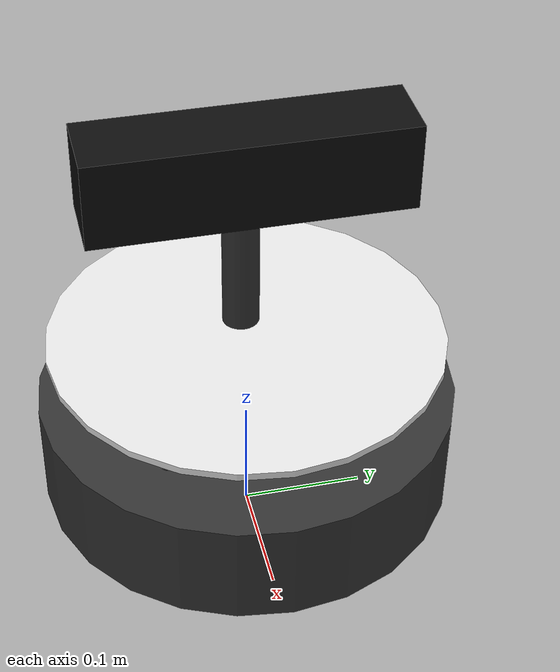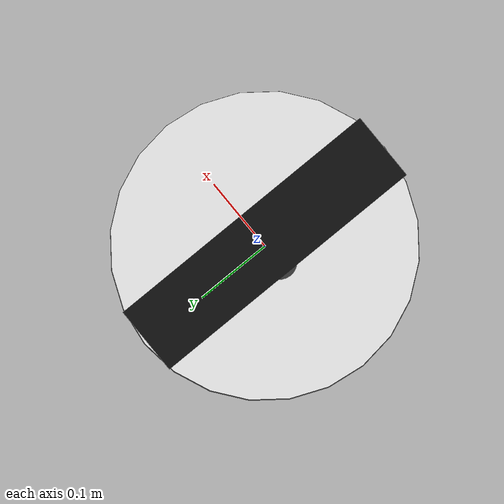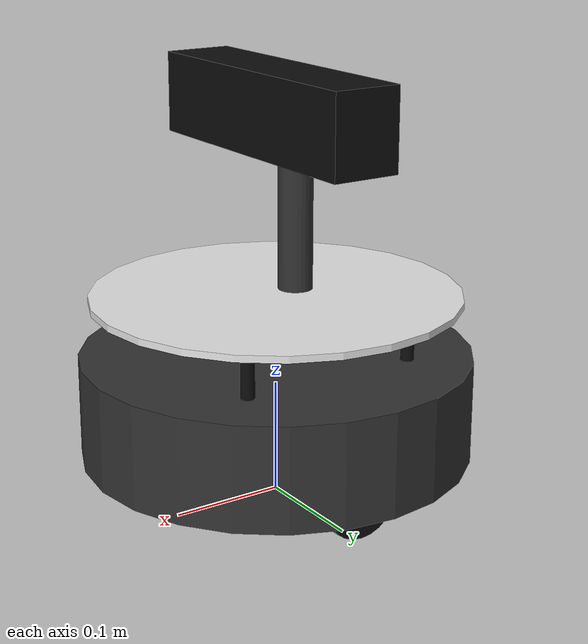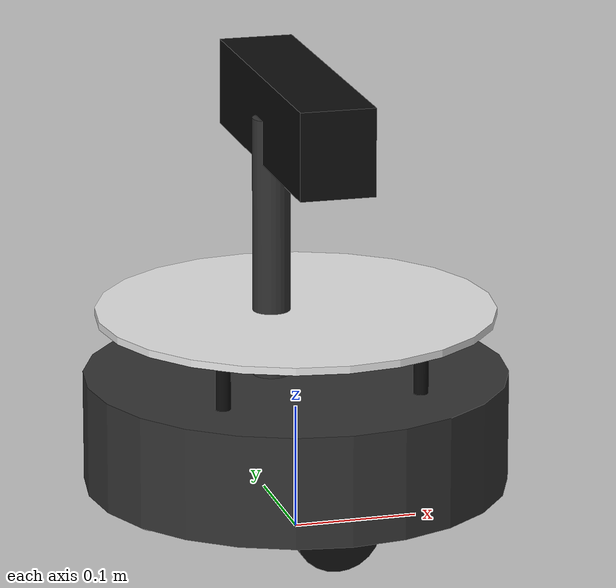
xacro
<?xml version="1.0"?>
<robot xmlns:xacro="http://www.ros.org/wiki/xacro" name="qbot2_robot">

  <!-- ==================== PROPERTIES ==================== -->
  <!-- Chassis (QBot2-style: cylindrical body) -->
  <xacro:property name="chassis_radius" value="0.17"/>
  <xacro:property name="chassis_height" value="0.09"/>
  <xacro:property name="chassis_mass" value="4.0"/>

  <!-- Drive wheels -->
  <xacro:property name="wheel_radius" value="0.035"/>
  <xacro:property name="wheel_width" value="0.025"/>
  <xacro:property name="wheel_mass" value="0.3"/>
  <xacro:property name="wheel_separation" value="0.23"/>

  <!-- Caster wheel -->
  <xacro:property name="caster_radius" value="0.015"/>
  <xacro:property name="caster_mass" value="0.1"/>

  <!-- Kinect V2 sensor -->
  <xacro:property name="kinect_width" value="0.25"/>
  <xacro:property name="kinect_height" value="0.07"/>
  <xacro:property name="kinect_depth" value="0.06"/>
  <xacro:property name="kinect_mass" value="0.5"/>
  <xacro:property name="kinect_mount_height" value="0.30"/>

  <!-- ==================== MATERIALS ==================== -->
  <material name="dark_grey">
    <color rgba="0.2 0.2 0.2 1.0"/>
  </material>
  <material name="black">
    <color rgba="0.05 0.05 0.05 1.0"/>
  </material>
  <material name="white">
    <color rgba="0.9 0.9 0.9 1.0"/>
  </material>
  <material name="green">
    <color rgba="0.0 0.8 0.0 1.0"/>
  </material>

  <!-- ==================== MACROS ==================== -->
  <!-- Inertia for a solid cylinder (rotation about Z-axis) -->
  <xacro:macro name="cylinder_inertia" params="m r h">
    <inertial>
      <mass value="${m}"/>
      <inertia ixx="${(1.0/12.0)*m*(3*r*r + h*h)}" ixy="0" ixz="0"
               iyy="${(1.0/12.0)*m*(3*r*r + h*h)}" iyz="0"
               izz="${(1.0/2.0)*m*r*r}"/>
    </inertial>
  </xacro:macro>

  <!-- Inertia for a solid sphere -->
  <xacro:macro name="sphere_inertia" params="m r">
    <inertial>
      <mass value="${m}"/>
      <inertia ixx="${(2.0/5.0)*m*r*r}" ixy="0" ixz="0"
               iyy="${(2.0/5.0)*m*r*r}" iyz="0"
               izz="${(2.0/5.0)*m*r*r}"/>
    </inertial>
  </xacro:macro>

  <!-- Inertia for a solid box -->
  <xacro:macro name="box_inertia" params="m x y z">
    <inertial>
      <mass value="${m}"/>
      <inertia ixx="${(1.0/12.0)*m*(y*y + z*z)}" ixy="0" ixz="0"
               iyy="${(1.0/12.0)*m*(x*x + z*z)}" iyz="0"
               izz="${(1.0/12.0)*m*(x*x + y*y)}"/>
    </inertial>
  </xacro:macro>

  <!-- ==================== BASE FOOTPRINT ==================== -->
  <link name="base_footprint"/>

  <joint name="base_joint" type="fixed">
    <parent link="base_footprint"/>
    <child link="base_link"/>
    <origin xyz="0 0 ${wheel_radius + 0.005}" rpy="0 0 0"/>
  </joint>

  <!-- ==================== BASE LINK (Chassis) ==================== -->
  <link name="base_link">
    <visual>
      <geometry>
        <cylinder radius="${chassis_radius}" length="${chassis_height}"/>
      </geometry>
      <origin xyz="0 0 ${chassis_height/2}" rpy="0 0 0"/>
      <material name="dark_grey"/>
    </visual>
    <collision>
      <geometry>
        <cylinder radius="${chassis_radius}" length="${chassis_height}"/>
      </geometry>
      <origin xyz="0 0 ${chassis_height/2}" rpy="0 0 0"/>
    </collision>
    <inertial>
      <mass value="${chassis_mass}"/>
      <origin xyz="0 0 ${chassis_height/2}" rpy="0 0 0"/>
      <inertia ixx="${(1.0/12.0)*chassis_mass*(3*chassis_radius*chassis_radius + chassis_height*chassis_height)}" ixy="0" ixz="0"
               iyy="${(1.0/12.0)*chassis_mass*(3*chassis_radius*chassis_radius + chassis_height*chassis_height)}" iyz="0"
               izz="${(1.0/2.0)*chassis_mass*chassis_radius*chassis_radius}"/>
    </inertial>
  </link>

  <!-- ==================== SECOND DECK (top platform) ==================== -->
  <link name="plate_top_link">
    <visual>
      <geometry>
        <cylinder radius="${chassis_radius - 0.01}" length="0.006"/>
      </geometry>
      <origin xyz="0 0 0" rpy="0 0 0"/>
      <material name="white"/>
    </visual>
    <collision>
      <geometry>
        <cylinder radius="${chassis_radius - 0.01}" length="0.006"/>
      </geometry>
    </collision>
    <inertial>
      <mass value="0.3"/>
      <inertia ixx="0.001" ixy="0" ixz="0"
               iyy="0.001" iyz="0"
               izz="0.001"/>
    </inertial>
  </link>

  <joint name="plate_top_joint" type="fixed">
    <parent link="base_link"/>
    <child link="plate_top_link"/>
    <origin xyz="0 0 ${chassis_height + 0.05}" rpy="0 0 0"/>
  </joint>

  <!-- ==================== STANDOFFS (4 pillars) ==================== -->
  <xacro:macro name="standoff" params="name x y">
    <link name="${name}">
      <visual>
        <geometry>
          <cylinder radius="0.006" length="0.05"/>
        </geometry>
        <origin xyz="0 0 0" rpy="0 0 0"/>
        <material name="black"/>
      </visual>
      <collision>
        <geometry>
          <cylinder radius="0.006" length="0.05"/>
        </geometry>
      </collision>
      <inertial>
        <mass value="0.02"/>
        <inertia ixx="0.0001" ixy="0" ixz="0"
                 iyy="0.0001" iyz="0"
                 izz="0.0001"/>
      </inertial>
    </link>
    <joint name="${name}_joint" type="fixed">
      <parent link="base_link"/>
      <child link="${name}"/>
      <origin xyz="${x} ${y} ${chassis_height + 0.025}" rpy="0 0 0"/>
    </joint>
  </xacro:macro>

  <xacro:standoff name="standoff_front_left"  x="0.08"  y="0.08"/>
  <xacro:standoff name="standoff_front_right" x="0.08"  y="-0.08"/>
  <xacro:standoff name="standoff_rear_left"   x="-0.08" y="0.08"/>
  <xacro:standoff name="standoff_rear_right"  x="-0.08" y="-0.08"/>

  <!-- ==================== DRIVE WHEELS ==================== -->
  <xacro:macro name="drive_wheel" params="prefix y_reflect">
    <link name="${prefix}_wheel">
      <visual>
        <geometry>
          <cylinder radius="${wheel_radius}" length="${wheel_width}"/>
        </geometry>
        <origin xyz="0 0 0" rpy="${pi/2} 0 0"/>
        <material name="black"/>
      </visual>
      <collision>
        <geometry>
          <cylinder radius="${wheel_radius}" length="${wheel_width}"/>
        </geometry>
        <origin xyz="0 0 0" rpy="${pi/2} 0 0"/>
      </collision>
      <xacro:cylinder_inertia m="${wheel_mass}" r="${wheel_radius}" h="${wheel_width}"/>
    </link>

    <joint name="${prefix}_wheel_joint" type="continuous">
      <parent link="base_link"/>
      <child link="${prefix}_wheel"/>
      <origin xyz="0 ${y_reflect * wheel_separation / 2} 0" rpy="0 0 0"/>
      <axis xyz="0 1 0"/>
      <dynamics damping="0.01" friction="0.1"/>
    </joint>
  </xacro:macro>

  <xacro:drive_wheel prefix="left"  y_reflect="1"/>
  <xacro:drive_wheel prefix="right" y_reflect="-1"/>

  <!-- ==================== CASTER WHEELS ==================== -->
  <xacro:macro name="caster_wheel" params="name x_offset">
    <link name="${name}">
      <visual>
        <geometry>
          <sphere radius="${caster_radius}"/>
        </geometry>
        <material name="white"/>
      </visual>
      <collision name="${name}_collision">
        <geometry>
          <sphere radius="${caster_radius}"/>
        </geometry>
      </collision>
      <xacro:sphere_inertia m="${caster_mass}" r="${caster_radius}"/>
    </link>

    <joint name="${name}_joint" type="fixed">
      <parent link="base_link"/>
      <child link="${name}"/>
      <origin xyz="${x_offset} 0 ${-(wheel_radius - caster_radius) + 0.002}" rpy="0 0 0"/>
    </joint>

    <!-- Frictionless surface for casters in Gazebo Harmonic -->
    <gazebo reference="${name}_collision">
      <surface>
        <friction>
          <ode>
            <mu>0.001</mu>
            <mu2>0.001</mu2>
          </ode>
        </friction>
      </surface>
    </gazebo>
  </xacro:macro>

  <xacro:caster_wheel name="front_caster" x_offset="0.12"/>
  <xacro:caster_wheel name="rear_caster"  x_offset="-0.12"/>

  <!-- ==================== KINECT V2 SENSOR MOUNT ==================== -->
  <!-- Sensor pole / neck -->
  <link name="camera_mount_link">
    <visual>
      <geometry>
        <cylinder radius="0.015" length="${kinect_mount_height - chassis_height}"/>
      </geometry>
      <origin xyz="0 0 ${(kinect_mount_height - chassis_height)/2}" rpy="0 0 0"/>
      <material name="dark_grey"/>
    </visual>
    <collision>
      <geometry>
        <cylinder radius="0.015" length="${kinect_mount_height - chassis_height}"/>
      </geometry>
      <origin xyz="0 0 ${(kinect_mount_height - chassis_height)/2}" rpy="0 0 0"/>
    </collision>
    <inertial>
      <mass value="0.15"/>
      <origin xyz="0 0 ${(kinect_mount_height - chassis_height)/2}" rpy="0 0 0"/>
      <inertia ixx="0.001" ixy="0" ixz="0"
               iyy="0.001" iyz="0"
               izz="0.0001"/>
    </inertial>
  </link>

  <joint name="camera_mount_joint" type="fixed">
    <parent link="base_link"/>
    <child link="camera_mount_link"/>
    <origin xyz="-0.02 0 ${chassis_height}" rpy="0 0 0"/>
  </joint>

  <!-- Kinect V2 body -->
  <link name="camera_link">
    <visual>
      <geometry>
        <box size="${kinect_depth} ${kinect_width} ${kinect_height}"/>
      </geometry>
      <origin xyz="0 0 0" rpy="0 0 0"/>
      <material name="black"/>
    </visual>
    <collision>
      <geometry>
        <box size="${kinect_depth} ${kinect_width} ${kinect_height}"/>
      </geometry>
    </collision>
    <xacro:box_inertia m="${kinect_mass}" x="${kinect_depth}" y="${kinect_width}" z="${kinect_height}"/>
  </link>

  <joint name="camera_joint" type="fixed">
    <parent link="camera_mount_link"/>
    <child link="camera_link"/>
    <origin xyz="0.02 0 ${kinect_mount_height - chassis_height}" rpy="0 0 0"/>
  </joint>

  <!-- Kinect V2 optical frame (Z forward, X right, Y down) -->
  <link name="camera_depth_optical_frame"/>

  <joint name="camera_depth_optical_joint" type="fixed">
    <parent link="camera_link"/>
    <child link="camera_depth_optical_frame"/>
    <origin xyz="0 0 0" rpy="${-pi/2} 0 ${-pi/2}"/>
  </joint>

  <!-- ==================== GAZEBO COLORS ==================== -->
  <gazebo reference="base_link">
    <material>
      <ambient>0.2 0.2 0.2 1</ambient>
      <diffuse>0.2 0.2 0.2 1</diffuse>
    </material>
  </gazebo>
  <gazebo reference="plate_top_link">
    <material>
      <ambient>0.9 0.9 0.9 1</ambient>
      <diffuse>0.9 0.9 0.9 1</diffuse>
    </material>
  </gazebo>
  <gazebo reference="left_wheel">
    <material>
      <ambient>0.05 0.05 0.05 1</ambient>
      <diffuse>0.05 0.05 0.05 1</diffuse>
    </material>
  </gazebo>
  <gazebo reference="right_wheel">
    <material>
      <ambient>0.05 0.05 0.05 1</ambient>
      <diffuse>0.05 0.05 0.05 1</diffuse>
    </material>
  </gazebo>
  <gazebo reference="camera_link">
    <material>
      <ambient>0.05 0.05 0.05 1</ambient>
      <diffuse>0.05 0.05 0.05 1</diffuse>
    </material>
  </gazebo>
  <gazebo reference="camera_mount_link">
    <material>
      <ambient>0.2 0.2 0.2 1</ambient>
      <diffuse>0.2 0.2 0.2 1</diffuse>
    </material>
  </gazebo>

  <!-- ==================== GAZEBO: DIFFERENTIAL DRIVE PLUGIN ==================== -->
  <gazebo>
    <plugin filename="gz-sim-diff-drive-system" name="gz::sim::systems::DiffDrive">
      <!-- Wheel joints -->
      <left_joint>left_wheel_joint</left_joint>
      <right_joint>right_wheel_joint</right_joint>

      <!-- Kinematics -->
      <wheel_separation>${wheel_separation}</wheel_separation>
      <wheel_radius>${wheel_radius}</wheel_radius>

      <!-- Limits -->
      <max_linear_acceleration>1.0</max_linear_acceleration>

      <!-- Output -->
      <odom_publish_frequency>30</odom_publish_frequency>

      <frame_id>odom</frame_id>
      <child_frame_id>base_footprint</child_frame_id>
    </plugin>
  </gazebo>

  <!-- ==================== GAZEBO: KINECT V2 DEPTH CAMERA (RGBD) ==================== -->
  <gazebo reference="camera_link">
    <!-- Native Lidar for Obstacle Avoidance -->
    <sensor name="kinect_v2_lidar" type="gpu_lidar">
      <always_on>true</always_on>
      <update_rate>15</update_rate>
      <topic>/scan</topic>
      <gz_frame_id>base_footprint</gz_frame_id>

      <lidar>
        <scan>
          <horizontal>
            <samples>360</samples>
            <resolution>1</resolution>
            <min_angle>-3.1416</min_angle>
            <max_angle>3.1416</max_angle>
          </horizontal>
          <vertical>
            <samples>1</samples>
            <resolution>1</resolution>
            <min_angle>0</min_angle>
            <max_angle>0</max_angle>
          </vertical>
        </scan>
        <range>
          <min>0.15</min>
          <max>8.0</max>
          <resolution>0.01</resolution>
        </range>
        <noise>
          <type>gaussian</type>
          <mean>0.0</mean>
          <stddev>0.005</stddev>
        </noise>
      </lidar>
    </sensor>

    <!-- RGBD Camera for RTAB-Map and YOLO -->
    <sensor name="kinect_v2" type="rgbd_camera">
      <always_on>true</always_on>
      <update_rate>15.0</update_rate>
      <topic>/camera</topic>
      <gz_frame_id>camera_depth_optical_frame</gz_frame_id>
      <camera name="rgbd_camera">
        <horizontal_fov>1.089</horizontal_fov>
        <image>
          <width>640</width>
          <height>480</height>
          <format>R8G8B8</format>
        </image>
        <clip>
          <near>0.05</near>
          <far>8.0</far>
        </clip>
        <depth_camera>
          <clip>
            <near>0.1</near>
            <far>8.0</far>
          </clip>
        </depth_camera>
      </camera>
    </sensor>
  </gazebo>

  <!-- Joint state publisher plugin (publishes wheel joint states) -->
  <gazebo>
    <plugin filename="gz-sim-joint-state-publisher-system" name="gz::sim::systems::JointStatePublisher">
      <topic>/joint_states</topic>
      <joint_name>left_wheel_joint</joint_name>
      <joint_name>right_wheel_joint</joint_name>
    </plugin>
  </gazebo>

</robot>
